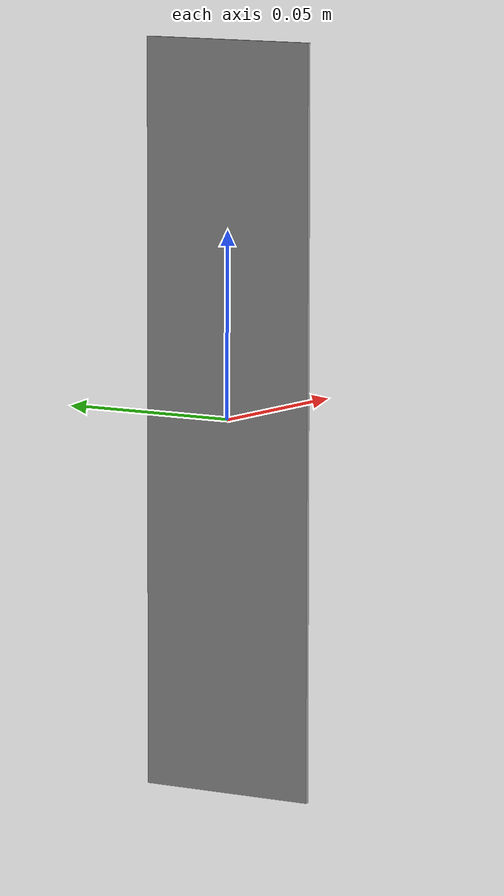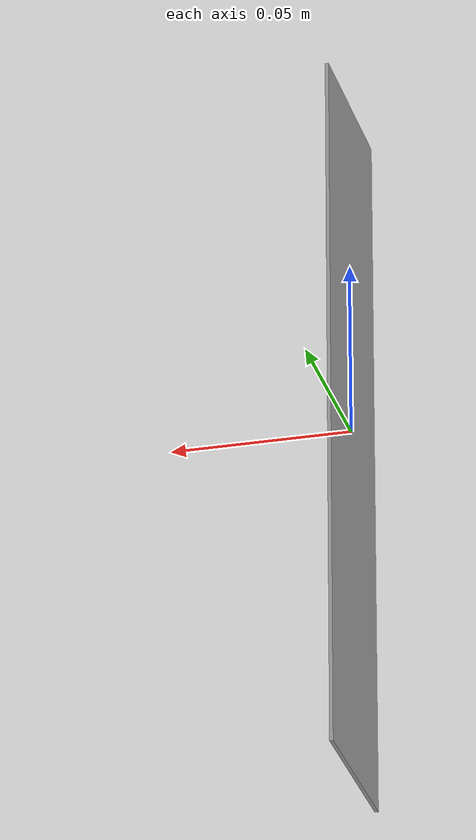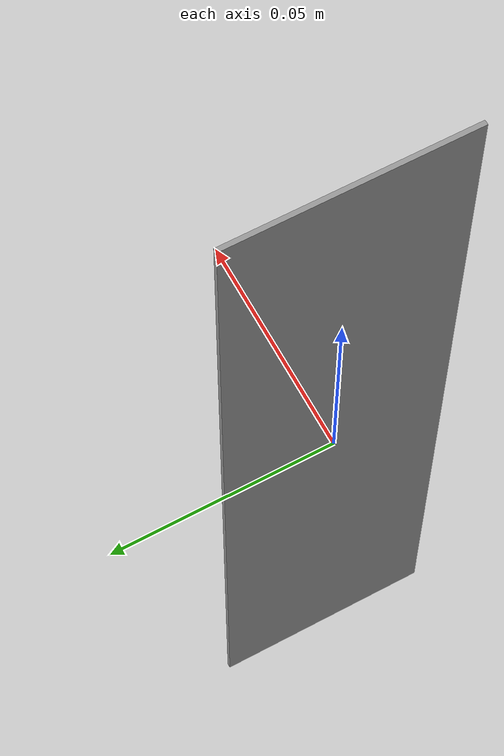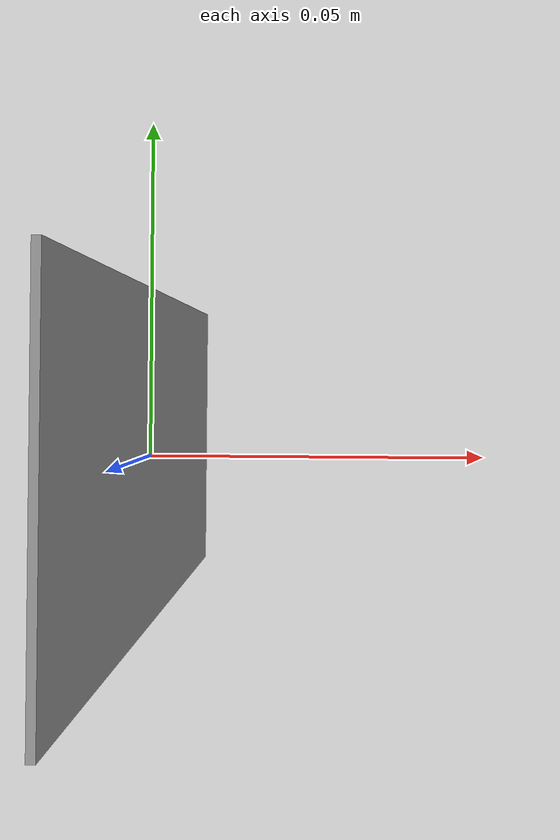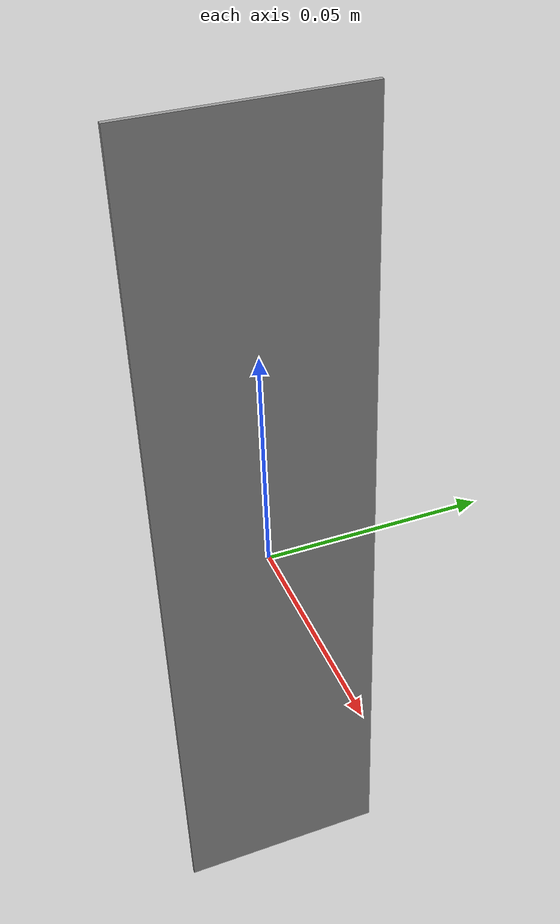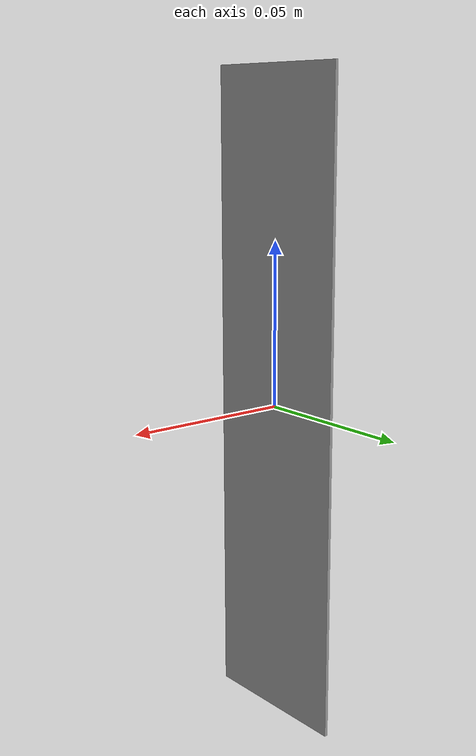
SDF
<?xml version="1.0" ?>
<sdf version="1.5">
  <model name="marker">
    <static>true</static>
    <link name="link">
      <collision name="collision">
        <geometry>
          <box>
            <size>0.001 0.05 0.2</size>
          </box>
        </geometry>
        <surface>
          <friction>
            <ode>
              <mu>100</mu>
              <mu2>50</mu2>
            </ode>
          </friction>
        </surface>
      <laser_retro>0.8</laser_retro>
      </collision>
      <visual name="visual">
        <cast_shadows>false</cast_shadows>
        <geometry>
          <box>
            <size>0.001 0.05 0.2</size>
          </box>
        </geometry>
        <material>
          <script>
            <uri>file://media/materials/scripts/gazebo.material</uri>
            <name>Gazebo/Grey</name>
          </script>
        </material>
      </visual>
    </link>
  </model>
</sdf>
